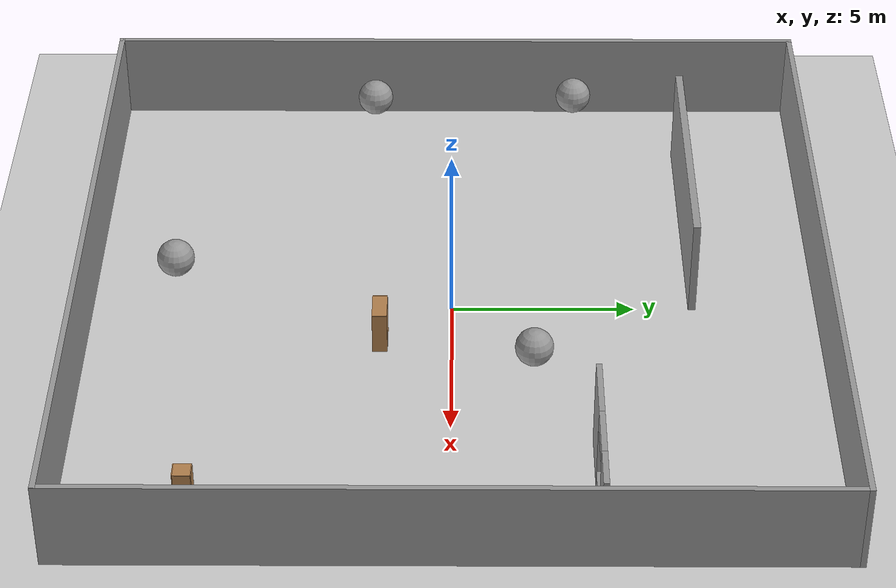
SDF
<sdf version="1.6">
 <world name="default">
  <light name="sun" type="directional">
   <pose>0 0 10 0 -0 0</pose>
   <diffuse>0.8 0.8 0.8 1</diffuse>
   <specular>0.2 0.2 0.2 1</specular>
   <attenuation>
    <range>1000</range>
    <constant>0.9</constant>
    <linear>0.01</linear>
    <quadratic>0.001</quadratic>
   </attenuation>
   <direction>-0.5 0.1 -0.9</direction>
  </light>
  <model name="ground_plane">
   <static>1</static>
   <link name="link">
    <collision name="collision">
     <geometry><plane><normal>0 0 1</normal><size>100 100</size></plane></geometry>
     <surface>
      <contact><collide_bitmask>65535</collide_bitmask></contact>
      <friction><ode><mu>100</mu><mu2>50</mu2></ode></friction>
     </surface>
    </collision>
    <visual name="visual">
     <cast_shadows>0</cast_shadows>
     <geometry><plane><normal>0 0 1</normal><size>100 100</size></plane></geometry>
     <material>
      <script><uri>file://media/materials/scripts/gazebo.material</uri><name>Gazebo/Grey</name></script>
     </material>
    </visual>
   </link>
  </model>
  <gravity>0 0 -9.8</gravity>
  <magnetic_field>6e-06 2.3e-05 -4.2e-05</magnetic_field>
  <atmosphere type="adiabatic"/>
  <physics name="default_physics" default="0" type="ode">
   <max_step_size>0.001</max_step_size>
   <real_time_factor>1</real_time_factor>
   <real_time_update_rate>0</real_time_update_rate>
  </physics>
  <scene><ambient>0.4 0.4 0.4 1</ambient><background>0.7 0.7 0.7 1</background><shadows>1</shadows></scene>
  <audio><device>default</device></audio>
  <spherical_coordinates>
   <surface_model>EARTH_WGS84</surface_model>
   <latitude_deg>0</latitude_deg>
   <longitude_deg>0</longitude_deg>
   <elevation>0</elevation>
   <heading_deg>0</heading_deg>
  </spherical_coordinates>
  <model name="opspace_20">
   <pose>0.079762 0.0599 0 0 -0 0</pose>
   <link name="Wall_1">
    <collision name="Wall_1_Collision">
     <geometry><box><size>20.15 0.15 2.5</size></box></geometry>
     <pose>0 0 1.25 0 -0 0</pose>
    </collision>
    <visual name="Wall_1_Visual">
     <pose>0 0 1.25 0 -0 0</pose>
     <geometry><box><size>20.15 0.15 2.5</size></box></geometry>
     <material>
      <script><uri>file://media/materials/scripts/gazebo.material</uri><name>Gazebo/Grey</name></script>
      <ambient>1 1 1 1</ambient>
     </material>
     <meta><layer>0</layer></meta>
    </visual>
    <pose>0 10 0 0 -0 0</pose>
   </link>
   <link name="Wall_3">
    <collision name="Wall_3_Collision">
     <geometry><box><size>20.15 0.15 2.5</size></box></geometry>
     <pose>0 0 1.25 0 -0 0</pose>
    </collision>
    <visual name="Wall_3_Visual">
     <pose>0 0 1.25 0 -0 0</pose>
     <geometry><box><size>20.15 0.15 2.5</size></box></geometry>
     <material>
      <script><uri>file://media/materials/scripts/gazebo.material</uri><name>Gazebo/Grey</name></script>
      <ambient>1 1 1 1</ambient>
     </material>
     <meta><layer>0</layer></meta>
    </visual>
    <pose>0 -10 0 0 -0 0</pose>
   </link>
   <link name="Wall_5">
    <collision name="Wall_5_Collision">
     <geometry><box><size>20.15 0.15 2.5</size></box></geometry>
     <pose>0 0 1.25 0 -0 0</pose>
    </collision>
    <visual name="Wall_5_Visual">
     <pose>0 0 1.25 0 -0 0</pose>
     <geometry><box><size>20.15 0.15 2.5</size></box></geometry>
     <material>
      <script><uri>file://media/materials/scripts/gazebo.material</uri><name>Gazebo/Grey</name></script>
      <ambient>1 1 1 1</ambient>
     </material>
     <meta><layer>0</layer></meta>
    </visual>
    <pose>-10 0 0 0 -0 1.5708</pose>
   </link>
   <link name="Wall_7">
    <collision name="Wall_7_Collision">
     <geometry><box><size>20.15 0.15 2.5</size></box></geometry>
     <pose>0 0 1.25 0 -0 0</pose>
    </collision>
    <visual name="Wall_7_Visual">
     <pose>0 0 1.25 0 -0 0</pose>
     <geometry><box><size>20.15 0.15 2.5</size></box></geometry>
     <material>
      <script><uri>file://media/materials/scripts/gazebo.material</uri><name>Gazebo/Grey</name></script>
      <ambient>1 1 1 1</ambient>
     </material>
     <meta><layer>0</layer></meta>
    </visual>
    <pose>10 0 0 0 -0 1.5708</pose>
   </link>
   <static>1</static>
  </model>
  <model name="bookshelf">
   <static>1</static>
   <link name="link">
    <inertial><mass>1</mass></inertial>
    <collision name="back">
     <pose>0 0.005 0.6 0 -0 0</pose>
     <geometry><box><size>0.9 0.01 1.2</size></box></geometry>
    </collision>
    <visual name="visual1">
     <pose>0 0.005 0.6 0 -0 0</pose>
     <geometry><box><size>0.9 0.01 1.2</size></box></geometry>
     <material>
      <script><uri>file://media/materials/scripts/gazebo.material</uri><name>Gazebo/Wood</name></script>
     </material>
    </visual>
    <collision name="left_side">
     <pose>0.45 -0.195 0.6 0 -0 0</pose>
     <geometry><box><size>0.02 0.4 1.2</size></box></geometry>
    </collision>
    <visual name="visual2">
     <pose>0.45 -0.195 0.6 0 -0 0</pose>
     <geometry><box><size>0.02 0.4 1.2</size></box></geometry>
     <material>
      <script><uri>file://media/materials/scripts/gazebo.material</uri><name>Gazebo/Wood</name></script>
     </material>
    </visual>
    <collision name="right_side">
     <pose>-0.45 -0.195 0.6 0 -0 0</pose>
     <geometry><box><size>0.02 0.4 1.2</size></box></geometry>
    </collision>
    <visual name="visual3">
     <pose>-0.45 -0.195 0.6 0 -0 0</pose>
     <geometry><box><size>0.02 0.4 1.2</size></box></geometry>
     <material>
      <script><uri>file://media/materials/scripts/gazebo.material</uri><name>Gazebo/Wood</name></script>
     </material>
    </visual>
    <collision name="bottom">
     <pose>0 -0.195 0.03 0 -0 0</pose>
     <geometry><box><size>0.88 0.4 0.06</size></box></geometry>
    </collision>
    <visual name="visual4">
     <pose>0 -0.195 0.03 0 -0 0</pose>
     <geometry><box><size>0.88 0.4 0.06</size></box></geometry>
     <material>
      <script><uri>file://media/materials/scripts/gazebo.material</uri><name>Gazebo/Wood</name></script>
     </material>
    </visual>
    <collision name="top">
     <pose>0 -0.195 1.19 0 -0 0</pose>
     <geometry><box><size>0.88 0.4 0.02</size></box></geometry>
    </collision>
    <visual name="visual5">
     <pose>0 -0.195 1.19 0 -0 0</pose>
     <geometry><box><size>0.88 0.4 0.02</size></box></geometry>
     <material>
      <script><uri>file://media/materials/scripts/gazebo.material</uri><name>Gazebo/Wood</name></script>
     </material>
    </visual>
    <collision name="low_shelf">
     <pose>0 -0.195 0.43 0 -0 0</pose>
     <geometry><box><size>0.88 0.4 0.02</size></box></geometry>
    </collision>
    <visual name="visual6">
     <pose>0 -0.195 0.43 0 -0 0</pose>
     <geometry><box><size>0.88 0.4 0.02</size></box></geometry>
     <material>
      <script><uri>file://media/materials/scripts/gazebo.material</uri><name>Gazebo/Wood</name></script>
     </material>
    </visual>
    <collision name="high_shelf">
     <pose>0 -0.195 0.8 0 -0 0</pose>
     <geometry><box><size>0.88 0.4 0.02</size></box></geometry>
    </collision>
    <visual name="visual7">
     <pose>0 -0.195 0.8 0 -0 0</pose>
     <geometry><box><size>0.88 0.4 0.02</size></box></geometry>
     <material>
      <script><uri>file://media/materials/scripts/gazebo.material</uri><name>Gazebo/Wood</name></script>
     </material>
    </visual>
   </link>
   <pose>1.39789 -1.73199 0 0 -0 0</pose>
  </model>
  <model name="cabinet">
   <static>1</static>
   <link name="cabinet_bottom_plate">
    <inertial>
     <pose>0 0 -1 0 -0 0</pose>
     <inertia><ixx>2.05</ixx><ixy>0</ixy><ixz>0</ixz><iyy>2.05</iyy><iyz>0</iyz><izz>2.05</izz></inertia>
     <mass>25</mass>
    </inertial>
    <collision name="cabinet_bottom_plate_geom">
     <pose>0 0 0.01 0 -0 0</pose>
     <geometry><box><size>0.45 0.45 0.02</size></box></geometry>
    </collision>
    <visual name="cabinet_bottom_plate_geom_visual">
     <pose>0 0 0.01 0 -0 0</pose>
     <geometry><box><size>0.45 0.45 0.02</size></box></geometry>
     <material>
      <script><uri>file://media/materials/scripts/gazebo.material</uri><name>Gazebo/Wood</name></script>
     </material>
    </visual>
    <collision name="cabinet_bottom_plate_geom_cabinet_back_plate">
     <pose>0.235 0 0.51 0 -0 0</pose>
     <geometry><box><size>0.02 0.45 1.02</size></box></geometry>
    </collision>
    <visual name="cabinet_bottom_plate_geom_cabinet_back_plate_visual">
     <pose>0.235 0 0.51 0 -0 0</pose>
     <geometry><box><size>0.02 0.45 1.02</size></box></geometry>
     <material>
      <script><uri>file://media/materials/scripts/gazebo.material</uri><name>Gazebo/Wood</name></script>
     </material>
    </visual>
    <collision name="cabinet_bottom_plate_geom_cabinet_left_plate">
     <pose>0 0.235 0.51 0 -0 0</pose>
     <geometry><box><size>0.45 0.02 1.02</size></box></geometry>
    </collision>
    <visual name="cabinet_bottom_plate_geom_cabinet_left_plate_visual">
     <pose>0 0.235 0.51 0 -0 0</pose>
     <geometry><box><size>0.45 0.02 1.02</size></box></geometry>
     <material>
      <script><uri>file://media/materials/scripts/gazebo.material</uri><name>Gazebo/Wood</name></script>
     </material>
    </visual>
    <collision name="cabinet_bottom_plate_geom_cabinet_middle_plate">
     <pose>0 0 0.51 0 -0 0</pose>
     <geometry><box><size>0.45 0.45 0.02</size></box></geometry>
    </collision>
    <visual name="cabinet_bottom_plate_geom_cabinet_middle_plate_visual">
     <pose>0 0 0.51 0 -0 0</pose>
     <geometry><box><size>0.45 0.45 0.02</size></box></geometry>
     <material>
      <script><uri>file://media/materials/scripts/gazebo.material</uri><name>Gazebo/Wood</name></script>
     </material>
    </visual>
    <collision name="cabinet_bottom_plate_geom_cabinet_right_plate">
     <pose>0 -0.235 0.51 0 -0 0</pose>
     <geometry><box><size>0.45 0.02 1.02</size></box></geometry>
    </collision>
    <visual name="cabinet_bottom_plate_geom_cabinet_right_plate_visual">
     <pose>0 -0.235 0.51 0 -0 0</pose>
     <geometry><box><size>0.45 0.02 1.02</size></box></geometry>
     <material>
      <script><uri>file://media/materials/scripts/gazebo.material</uri><name>Gazebo/Wood</name></script>
     </material>
    </visual>
    <collision name="cabinet_bottom_plate_geom_cabinet_top_plate">
     <pose>0 0 1.01 0 -0 0</pose>
     <geometry><box><size>0.45 0.45 0.02</size></box></geometry>
    </collision>
    <visual name="cabinet_bottom_plate_geom_cabinet_top_plate_visual">
     <pose>0 0 1.01 0 -0 0</pose>
     <geometry><box><size>0.45 0.45 0.02</size></box></geometry>
     <material>
      <script><uri>file://media/materials/scripts/gazebo.material</uri><name>Gazebo/Wood</name></script>
     </material>
    </visual>
   </link>
   <pose>7.79934 -6.67598 0 0 -0 0</pose>
  </model>
  <model name="grey_wall">
   <static>1</static>
   <link name="link">
    <pose>0 0 1.4 0 -0 0</pose>
    <collision name="collision"><geometry><box><size>7.5 0.2 2.8</size></box></geometry></collision>
    <visual name="visual">
     <cast_shadows>0</cast_shadows>
     <geometry><box><size>7.5 0.2 2.8</size></box></geometry>
     <material>
      <script>
       <uri>model://grey_wall/materials/scripts</uri>
       <uri>model://grey_wall/materials/textures</uri>
       <name>vrc/grey_wall</name>
      </script>
     </material>
    </visual>
   </link>
   <pose>-3.74553 6.59503 0 0 -0 0</pose>
  </model>
  <model name="sphere1">
   <link name="link_0">
    <inertial>
     <mass>1</mass>
     <inertia><ixx>0</ixx><ixy>0</ixy><ixz>0</ixz><iyy>0</iyy><iyz>0</iyz><izz>0</izz></inertia>
    </inertial>
    <gravity>0</gravity>
    <visual name="visual">
     <geometry><sphere><radius>0.5</radius></sphere></geometry>
     <material>
      <lighting>1</lighting>
      <script><uri>file://media/materials/scripts/gazebo.material</uri><name>Gazebo/Grey</name></script>
      <shader type="vertex"><normal_map>__default__</normal_map></shader>
      <ambient>0.3 0.3 0.3 1</ambient>
      <diffuse>0.7 0.7 0.7 1</diffuse>
      <specular>0.01 0.01 0.01 1</specular>
      <emissive>0 0 0 1</emissive>
     </material>
    </visual>
    <collision name="collision">
     <geometry><sphere><radius>0.5</radius></sphere></geometry>
     <surface>
      <friction>
       <ode><mu>100</mu><mu2>100</mu2><fdir1>0 0 0</fdir1><slip1>0</slip1><slip2>0</slip2></ode>
       <torsional>
        <coefficient>1</coefficient>
        <patch_radius>0</patch_radius>
        <surface_radius>0</surface_radius>
        <use_patch_radius>1</use_patch_radius>
        <ode><slip>0</slip></ode>
       </torsional>
      </friction>
      <bounce><restitution_coefficient>0</restitution_coefficient><threshold>1e+06</threshold></bounce>
      <contact>
       <collide_without_contact>0</collide_without_contact>
       <collide_without_contact_bitmask>1</collide_without_contact_bitmask>
       <collide_bitmask>1</collide_bitmask>
       <ode>
        <soft_cfm>0</soft_cfm>
        <soft_erp>0.2</soft_erp>
        <kp>1e+13</kp>
        <kd>1</kd>
        <max_vel>0</max_vel>
        <min_depth>0</min_depth>
       </ode>
       <bullet>
        <split_impulse>1</split_impulse>
        <split_impulse_penetration_threshold>-0.01</split_impulse_penetration_threshold>
        <soft_cfm>0</soft_cfm>
        <soft_erp>0.2</soft_erp>
        <kp>1e+13</kp>
        <kd>1</kd>
       </bullet>
      </contact>
     </surface>
    </collision>
   </link>
   <static>1</static>
   <pose>-7.21429 3.50108 2.3 0 -0 0</pose>
  </model>
  <model name="sphere2">
   <link name="link_1">
    <inertial>
     <mass>1</mass>
     <inertia><ixx>0</ixx><ixy>0</ixy><ixz>0</ixz><iyy>0</iyy><iyz>0</iyz><izz>0</izz></inertia>
    </inertial>
    <gravity>0</gravity>
    <visual name="visual">
     <geometry><sphere><radius>0.5</radius></sphere></geometry>
     <material>
      <lighting>1</lighting>
      <script><uri>file://media/materials/scripts/gazebo.material</uri><name>Gazebo/Grey</name></script>
      <shader type="vertex"><normal_map>__default__</normal_map></shader>
      <ambient>0.3 0.3 0.3 1</ambient>
      <diffuse>0.7 0.7 0.7 1</diffuse>
      <specular>0.01 0.01 0.01 1</specular>
      <emissive>0 0 0 1</emissive>
     </material>
    </visual>
    <collision name="collision">
     <geometry><sphere><radius>0.5</radius></sphere></geometry>
     <surface>
      <friction>
       <ode><mu>100</mu><mu2>100</mu2><fdir1>0 0 0</fdir1><slip1>0</slip1><slip2>0</slip2></ode>
       <torsional>
        <coefficient>1</coefficient>
        <patch_radius>0</patch_radius>
        <surface_radius>0</surface_radius>
        <use_patch_radius>1</use_patch_radius>
        <ode><slip>0</slip></ode>
       </torsional>
      </friction>
      <bounce><restitution_coefficient>0</restitution_coefficient><threshold>1e+06</threshold></bounce>
      <contact>
       <collide_without_contact>0</collide_without_contact>
       <collide_without_contact_bitmask>1</collide_without_contact_bitmask>
       <collide_bitmask>1</collide_bitmask>
       <ode>
        <soft_cfm>0</soft_cfm>
        <soft_erp>0.2</soft_erp>
        <kp>1e+13</kp>
        <kd>1</kd>
        <max_vel>0</max_vel>
        <min_depth>0</min_depth>
       </ode>
       <bullet>
        <split_impulse>1</split_impulse>
        <split_impulse_penetration_threshold>-0.01</split_impulse_penetration_threshold>
        <soft_cfm>0</soft_cfm>
        <soft_erp>0.2</soft_erp>
        <kp>1e+13</kp>
        <kd>1</kd>
       </bullet>
      </contact>
     </surface>
    </collision>
   </link>
   <static>1</static>
   <pose>4.5 2.13927 2.3 0 -0 0</pose>
  </model>
  <model name="sphere3_clone">
   <link name="link_2">
    <inertial>
     <mass>1</mass>
     <inertia><ixx>0</ixx><ixy>0</ixy><ixz>0</ixz><iyy>0</iyy><iyz>0</iyz><izz>0</izz></inertia>
    </inertial>
    <gravity>0</gravity>
    <visual name="visual">
     <geometry><sphere><radius>0.5</radius></sphere></geometry>
     <material>
      <lighting>1</lighting>
      <script><uri>file://media/materials/scripts/gazebo.material</uri><name>Gazebo/Grey</name></script>
      <shader type="vertex"><normal_map>__default__</normal_map></shader>
      <ambient>0.3 0.3 0.3 1</ambient>
      <diffuse>0.7 0.7 0.7 1</diffuse>
      <specular>0.01 0.01 0.01 1</specular>
      <emissive>0 0 0 1</emissive>
     </material>
    </visual>
    <collision name="collision">
     <geometry><sphere><radius>0.5</radius></sphere></geometry>
     <surface>
      <friction>
       <ode><mu>100</mu><mu2>100</mu2><fdir1>0 0 0</fdir1><slip1>0</slip1><slip2>0</slip2></ode>
       <torsional>
        <coefficient>1</coefficient>
        <patch_radius>0</patch_radius>
        <surface_radius>0</surface_radius>
        <use_patch_radius>1</use_patch_radius>
        <ode><slip>0</slip></ode>
       </torsional>
      </friction>
      <bounce><restitution_coefficient>0</restitution_coefficient><threshold>1e+06</threshold></bounce>
      <contact>
       <collide_without_contact>0</collide_without_contact>
       <collide_without_contact_bitmask>1</collide_without_contact_bitmask>
       <collide_bitmask>1</collide_bitmask>
       <ode>
        <soft_cfm>0</soft_cfm>
        <soft_erp>0.2</soft_erp>
        <kp>1e+13</kp>
        <kd>1</kd>
        <max_vel>0</max_vel>
        <min_depth>0</min_depth>
       </ode>
       <bullet>
        <split_impulse>1</split_impulse>
        <split_impulse_penetration_threshold>-0.01</split_impulse_penetration_threshold>
        <soft_cfm>0</soft_cfm>
        <soft_erp>0.2</soft_erp>
        <kp>1e+13</kp>
        <kd>1</kd>
       </bullet>
      </contact>
     </surface>
    </collision>
   </link>
   <static>1</static>
   <pose>-7.10232 -2.2496 2.3 0 -0 0</pose>
  </model>
  <model name="window_0">
   <pose>7.66164 3.74685 -0.010896 0 -0 0</pose>
   <link name="Wall_14">
    <visual name="Wall_14_Visual_0">
     <pose>-1.33533 0 1.25 0 -0 0</pose>
     <geometry><box><size>1.82935 0.15 2.5</size></box></geometry>
     <material>
      <script><uri>file://media/materials/scripts/gazebo.material</uri><name>Gazebo/Grey</name></script>
      <ambient>1 1 1 1</ambient>
     </material>
     <meta><layer>0</layer></meta>
    </visual>
    <collision name="Wall_14_Collision_0">
     <geometry><box><size>1.82935 0.15 2.5</size></box></geometry>
     <pose>-1.33533 0 1.25 0 -0 0</pose>
    </collision>
    <visual name="Wall_14_Visual_1">
     <pose>0.914674 0 0.25 0 -0 0</pose>
     <geometry><box><size>2.67065 0.15 0.5</size></box></geometry>
     <material>
      <script><uri>file://media/materials/scripts/gazebo.material</uri><name>Gazebo/Grey</name></script>
      <ambient>1 1 1 1</ambient>
     </material>
     <meta><layer>0</layer></meta>
    </visual>
    <collision name="Wall_14_Collision_1">
     <geometry><box><size>2.67065 0.15 0.5</size></box></geometry>
     <pose>0.914674 0 0.25 0 -0 0</pose>
    </collision>
    <visual name="Wall_14_Visual_2">
     <pose>1.66467 0 1.5 0 -0 0</pose>
     <geometry><box><size>1.17065 0.15 2</size></box></geometry>
     <material>
      <script><uri>file://media/materials/scripts/gazebo.material</uri><name>Gazebo/Grey</name></script>
      <ambient>1 1 1 1</ambient>
     </material>
     <meta><layer>0</layer></meta>
    </visual>
    <collision name="Wall_14_Collision_2">
     <geometry><box><size>1.17065 0.15 2</size></box></geometry>
     <pose>1.66467 0 1.5 0 -0 0</pose>
    </collision>
    <visual name="Wall_14_Visual_3">
     <pose>0.329348 0 2.25 0 -0 0</pose>
     <geometry><box><size>1.5 0.15 0.5</size></box></geometry>
     <material>
      <script><uri>file://media/materials/scripts/gazebo.material</uri><name>Gazebo/Grey</name></script>
      <ambient>1 1 1 1</ambient>
     </material>
     <meta><layer>0</layer></meta>
    </visual>
    <collision name="Wall_14_Collision_3">
     <geometry><box><size>1.5 0.15 0.5</size></box></geometry>
     <pose>0.329348 0 2.25 0 -0 0</pose>
    </collision>
   </link>
   <static>1</static>
  </model>
  <model name="sphere3_clone_clone">
   <link name="link_2">
    <inertial>
     <mass>1</mass>
     <inertia><ixx>0</ixx><ixy>0</ixy><ixz>0</ixz><iyy>0</iyy><iyz>0</iyz><izz>0</izz></inertia>
    </inertial>
    <gravity>0</gravity>
    <visual name="visual">
     <geometry><sphere><radius>0.5</radius></sphere></geometry>
     <material>
      <lighting>1</lighting>
      <script><uri>file://media/materials/scripts/gazebo.material</uri><name>Gazebo/Grey</name></script>
      <shader type="vertex"><normal_map>__default__</normal_map></shader>
      <ambient>0.3 0.3 0.3 1</ambient>
      <diffuse>0.7 0.7 0.7 1</diffuse>
      <specular>0.01 0.01 0.01 1</specular>
      <emissive>0 0 0 1</emissive>
     </material>
    </visual>
    <collision name="collision">
     <geometry><sphere><radius>0.5</radius></sphere></geometry>
     <surface>
      <friction>
       <ode><mu>100</mu><mu2>100</mu2><fdir1>0 0 0</fdir1><slip1>0</slip1><slip2>0</slip2></ode>
       <torsional>
        <coefficient>1</coefficient>
        <patch_radius>0</patch_radius>
        <surface_radius>0</surface_radius>
        <use_patch_radius>1</use_patch_radius>
        <ode><slip>0</slip></ode>
       </torsional>
      </friction>
      <bounce><restitution_coefficient>0</restitution_coefficient><threshold>1e+06</threshold></bounce>
      <contact>
       <collide_without_contact>0</collide_without_contact>
       <collide_without_contact_bitmask>1</collide_without_contact_bitmask>
       <collide_bitmask>1</collide_bitmask>
       <ode>
        <soft_cfm>0</soft_cfm>
        <soft_erp>0.2</soft_erp>
        <kp>1e+13</kp>
        <kd>1</kd>
        <max_vel>0</max_vel>
        <min_depth>0</min_depth>
       </ode>
       <bullet>
        <split_impulse>1</split_impulse>
        <split_impulse_penetration_threshold>-0.01</split_impulse_penetration_threshold>
        <soft_cfm>0</soft_cfm>
        <soft_erp>0.2</soft_erp>
        <kp>1e+13</kp>
        <kd>1</kd>
       </bullet>
      </contact>
     </surface>
    </collision>
   </link>
   <static>1</static>
   <pose>0.740346 -7.37202 2.3 0 -0 0</pose>
  </model>
 </world>
</sdf>
